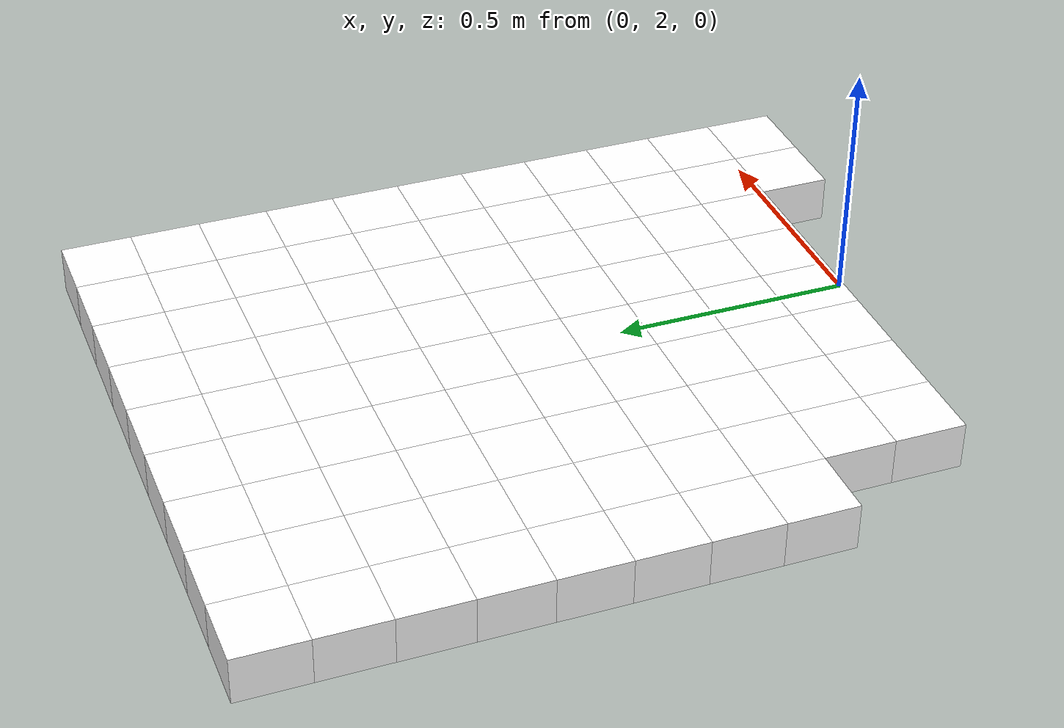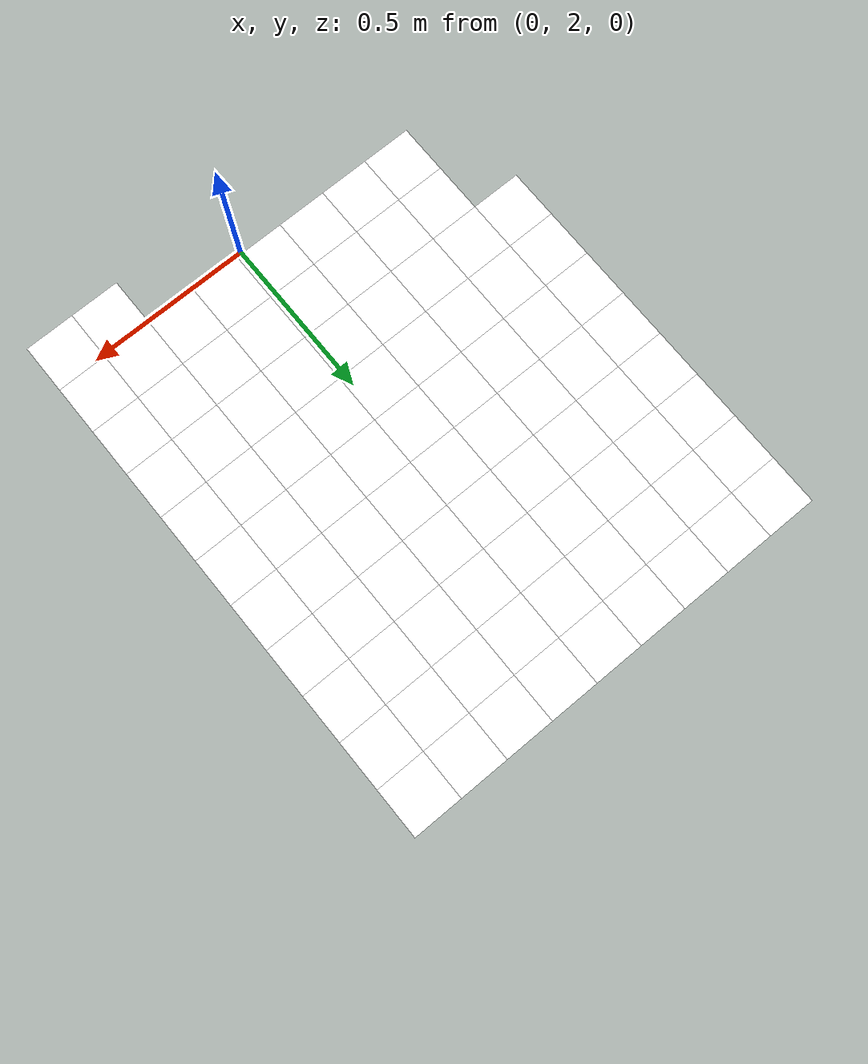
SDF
<sdf version="1.7">
 <world name="default">
  <include><uri>model://sun</uri></include>
  <model name="static_environment">
   <static>true</static>
   <link name="region_196">
    <pose>0.39999999999999947 1.9499999999999997 0.0 0.0 0.0 0.0</pose>
    <collision name="region_196_collision">
     <geometry><box><size>0.15 0.15 0.1</size></box></geometry>
     <surface><friction><ode><mu>1.0</mu><mu2>1.0</mu2></ode></friction></surface>
    </collision>
    <visual name="region_196_visual">
     <geometry><box><size>0.15 0.15 0.1</size></box></geometry>
     <material><ambient>1.0 1.0 1.0 1.0</ambient><diffuse>1.0 1.0 1.0 1.0</diffuse></material>
    </visual>
   </link>
   <link name="region_197">
    <pose>0.5499999999999994 1.9499999999999997 0.0 0.0 0.0 0.0</pose>
    <collision name="region_197_collision">
     <geometry><box><size>0.15 0.15 0.1</size></box></geometry>
     <surface><friction><ode><mu>1.0</mu><mu2>1.0</mu2></ode></friction></surface>
    </collision>
    <visual name="region_197_visual">
     <geometry><box><size>0.15 0.15 0.1</size></box></geometry>
     <material><ambient>1.0 1.0 1.0 1.0</ambient><diffuse>1.0 1.0 1.0 1.0</diffuse></material>
    </visual>
   </link>
   <link name="region_210">
    <pose>-0.5000000000000002 2.0999999999999996 0.0 0.0 0.0 0.0</pose>
    <collision name="region_210_collision">
     <geometry><box><size>0.15 0.15 0.1</size></box></geometry>
     <surface><friction><ode><mu>1.0</mu><mu2>1.0</mu2></ode></friction></surface>
    </collision>
    <visual name="region_210_visual">
     <geometry><box><size>0.15 0.15 0.1</size></box></geometry>
     <material><ambient>1.0 1.0 1.0 1.0</ambient><diffuse>1.0 1.0 1.0 1.0</diffuse></material>
    </visual>
   </link>
   <link name="region_211">
    <pose>-0.3500000000000003 2.0999999999999996 0.0 0.0 0.0 0.0</pose>
    <collision name="region_211_collision">
     <geometry><box><size>0.15 0.15 0.1</size></box></geometry>
     <surface><friction><ode><mu>1.0</mu><mu2>1.0</mu2></ode></friction></surface>
    </collision>
    <visual name="region_211_visual">
     <geometry><box><size>0.15 0.15 0.1</size></box></geometry>
     <material><ambient>1.0 1.0 1.0 1.0</ambient><diffuse>1.0 1.0 1.0 1.0</diffuse></material>
    </visual>
   </link>
   <link name="region_212">
    <pose>-0.2000000000000004 2.0999999999999996 0.0 0.0 0.0 0.0</pose>
    <collision name="region_212_collision">
     <geometry><box><size>0.15 0.15 0.1</size></box></geometry>
     <surface><friction><ode><mu>1.0</mu><mu2>1.0</mu2></ode></friction></surface>
    </collision>
    <visual name="region_212_visual">
     <geometry><box><size>0.15 0.15 0.1</size></box></geometry>
     <material><ambient>1.0 1.0 1.0 1.0</ambient><diffuse>1.0 1.0 1.0 1.0</diffuse></material>
    </visual>
   </link>
   <link name="region_213">
    <pose>-0.05000000000000049 2.0999999999999996 0.0 0.0 0.0 0.0</pose>
    <collision name="region_213_collision">
     <geometry><box><size>0.15 0.15 0.1</size></box></geometry>
     <surface><friction><ode><mu>1.0</mu><mu2>1.0</mu2></ode></friction></surface>
    </collision>
    <visual name="region_213_visual">
     <geometry><box><size>0.15 0.15 0.1</size></box></geometry>
     <material><ambient>1.0 1.0 1.0 1.0</ambient><diffuse>1.0 1.0 1.0 1.0</diffuse></material>
    </visual>
   </link>
   <link name="region_214">
    <pose>0.09999999999999964 2.0999999999999996 0.0 0.0 0.0 0.0</pose>
    <collision name="region_214_collision">
     <geometry><box><size>0.15 0.15 0.1</size></box></geometry>
     <surface><friction><ode><mu>1.0</mu><mu2>1.0</mu2></ode></friction></surface>
    </collision>
    <visual name="region_214_visual">
     <geometry><box><size>0.15 0.15 0.1</size></box></geometry>
     <material><ambient>1.0 1.0 1.0 1.0</ambient><diffuse>1.0 1.0 1.0 1.0</diffuse></material>
    </visual>
   </link>
   <link name="region_215">
    <pose>0.24999999999999956 2.0999999999999996 0.0 0.0 0.0 0.0</pose>
    <collision name="region_215_collision">
     <geometry><box><size>0.15 0.15 0.1</size></box></geometry>
     <surface><friction><ode><mu>1.0</mu><mu2>1.0</mu2></ode></friction></surface>
    </collision>
    <visual name="region_215_visual">
     <geometry><box><size>0.15 0.15 0.1</size></box></geometry>
     <material><ambient>1.0 1.0 1.0 1.0</ambient><diffuse>1.0 1.0 1.0 1.0</diffuse></material>
    </visual>
   </link>
   <link name="region_216">
    <pose>0.39999999999999947 2.0999999999999996 0.0 0.0 0.0 0.0</pose>
    <collision name="region_216_collision">
     <geometry><box><size>0.15 0.15 0.1</size></box></geometry>
     <surface><friction><ode><mu>1.0</mu><mu2>1.0</mu2></ode></friction></surface>
    </collision>
    <visual name="region_216_visual">
     <geometry><box><size>0.15 0.15 0.1</size></box></geometry>
     <material><ambient>1.0 1.0 1.0 1.0</ambient><diffuse>1.0 1.0 1.0 1.0</diffuse></material>
    </visual>
   </link>
   <link name="region_217">
    <pose>0.5499999999999994 2.0999999999999996 0.0 0.0 0.0 0.0</pose>
    <collision name="region_217_collision">
     <geometry><box><size>0.15 0.15 0.1</size></box></geometry>
     <surface><friction><ode><mu>1.0</mu><mu2>1.0</mu2></ode></friction></surface>
    </collision>
    <visual name="region_217_visual">
     <geometry><box><size>0.15 0.15 0.1</size></box></geometry>
     <material><ambient>1.0 1.0 1.0 1.0</ambient><diffuse>1.0 1.0 1.0 1.0</diffuse></material>
    </visual>
   </link>
   <link name="region_230">
    <pose>-0.5000000000000002 2.2499999999999996 0.0 0.0 0.0 0.0</pose>
    <collision name="region_230_collision">
     <geometry><box><size>0.15 0.15 0.1</size></box></geometry>
     <surface><friction><ode><mu>1.0</mu><mu2>1.0</mu2></ode></friction></surface>
    </collision>
    <visual name="region_230_visual">
     <geometry><box><size>0.15 0.15 0.1</size></box></geometry>
     <material><ambient>1.0 1.0 1.0 1.0</ambient><diffuse>1.0 1.0 1.0 1.0</diffuse></material>
    </visual>
   </link>
   <link name="region_231">
    <pose>-0.3500000000000003 2.2499999999999996 0.0 0.0 0.0 0.0</pose>
    <collision name="region_231_collision">
     <geometry><box><size>0.15 0.15 0.1</size></box></geometry>
     <surface><friction><ode><mu>1.0</mu><mu2>1.0</mu2></ode></friction></surface>
    </collision>
    <visual name="region_231_visual">
     <geometry><box><size>0.15 0.15 0.1</size></box></geometry>
     <material><ambient>1.0 1.0 1.0 1.0</ambient><diffuse>1.0 1.0 1.0 1.0</diffuse></material>
    </visual>
   </link>
   <link name="region_232">
    <pose>-0.2000000000000004 2.2499999999999996 0.0 0.0 0.0 0.0</pose>
    <collision name="region_232_collision">
     <geometry><box><size>0.15 0.15 0.1</size></box></geometry>
     <surface><friction><ode><mu>1.0</mu><mu2>1.0</mu2></ode></friction></surface>
    </collision>
    <visual name="region_232_visual">
     <geometry><box><size>0.15 0.15 0.1</size></box></geometry>
     <material><ambient>1.0 1.0 1.0 1.0</ambient><diffuse>1.0 1.0 1.0 1.0</diffuse></material>
    </visual>
   </link>
   <link name="region_233">
    <pose>-0.05000000000000049 2.2499999999999996 0.0 0.0 0.0 0.0</pose>
    <collision name="region_233_collision">
     <geometry><box><size>0.15 0.15 0.1</size></box></geometry>
     <surface><friction><ode><mu>1.0</mu><mu2>1.0</mu2></ode></friction></surface>
    </collision>
    <visual name="region_233_visual">
     <geometry><box><size>0.15 0.15 0.1</size></box></geometry>
     <material><ambient>1.0 1.0 1.0 1.0</ambient><diffuse>1.0 1.0 1.0 1.0</diffuse></material>
    </visual>
   </link>
   <link name="region_234">
    <pose>0.09999999999999964 2.2499999999999996 0.0 0.0 0.0 0.0</pose>
    <collision name="region_234_collision">
     <geometry><box><size>0.15 0.15 0.1</size></box></geometry>
     <surface><friction><ode><mu>1.0</mu><mu2>1.0</mu2></ode></friction></surface>
    </collision>
    <visual name="region_234_visual">
     <geometry><box><size>0.15 0.15 0.1</size></box></geometry>
     <material><ambient>1.0 1.0 1.0 1.0</ambient><diffuse>1.0 1.0 1.0 1.0</diffuse></material>
    </visual>
   </link>
   <link name="region_235">
    <pose>0.24999999999999956 2.2499999999999996 0.0 0.0 0.0 0.0</pose>
    <collision name="region_235_collision">
     <geometry><box><size>0.15 0.15 0.1</size></box></geometry>
     <surface><friction><ode><mu>1.0</mu><mu2>1.0</mu2></ode></friction></surface>
    </collision>
    <visual name="region_235_visual">
     <geometry><box><size>0.15 0.15 0.1</size></box></geometry>
     <material><ambient>1.0 1.0 1.0 1.0</ambient><diffuse>1.0 1.0 1.0 1.0</diffuse></material>
    </visual>
   </link>
   <link name="region_236">
    <pose>0.39999999999999947 2.2499999999999996 0.0 0.0 0.0 0.0</pose>
    <collision name="region_236_collision">
     <geometry><box><size>0.15 0.15 0.1</size></box></geometry>
     <surface><friction><ode><mu>1.0</mu><mu2>1.0</mu2></ode></friction></surface>
    </collision>
    <visual name="region_236_visual">
     <geometry><box><size>0.15 0.15 0.1</size></box></geometry>
     <material><ambient>1.0 1.0 1.0 1.0</ambient><diffuse>1.0 1.0 1.0 1.0</diffuse></material>
    </visual>
   </link>
   <link name="region_237">
    <pose>0.5499999999999994 2.2499999999999996 0.0 0.0 0.0 0.0</pose>
    <collision name="region_237_collision">
     <geometry><box><size>0.15 0.15 0.1</size></box></geometry>
     <surface><friction><ode><mu>1.0</mu><mu2>1.0</mu2></ode></friction></surface>
    </collision>
    <visual name="region_237_visual">
     <geometry><box><size>0.15 0.15 0.1</size></box></geometry>
     <material><ambient>1.0 1.0 1.0 1.0</ambient><diffuse>1.0 1.0 1.0 1.0</diffuse></material>
    </visual>
   </link>
   <link name="region_249">
    <pose>-0.6500000000000001 2.3999999999999995 0.0 0.0 0.0 0.0</pose>
    <collision name="region_249_collision">
     <geometry><box><size>0.15 0.15 0.1</size></box></geometry>
     <surface><friction><ode><mu>1.0</mu><mu2>1.0</mu2></ode></friction></surface>
    </collision>
    <visual name="region_249_visual">
     <geometry><box><size>0.15 0.15 0.1</size></box></geometry>
     <material><ambient>1.0 1.0 1.0 1.0</ambient><diffuse>1.0 1.0 1.0 1.0</diffuse></material>
    </visual>
   </link>
   <link name="region_250">
    <pose>-0.5000000000000002 2.3999999999999995 0.0 0.0 0.0 0.0</pose>
    <collision name="region_250_collision">
     <geometry><box><size>0.15 0.15 0.1</size></box></geometry>
     <surface><friction><ode><mu>1.0</mu><mu2>1.0</mu2></ode></friction></surface>
    </collision>
    <visual name="region_250_visual">
     <geometry><box><size>0.15 0.15 0.1</size></box></geometry>
     <material><ambient>1.0 1.0 1.0 1.0</ambient><diffuse>1.0 1.0 1.0 1.0</diffuse></material>
    </visual>
   </link>
   <link name="region_251">
    <pose>-0.3500000000000003 2.3999999999999995 0.0 0.0 0.0 0.0</pose>
    <collision name="region_251_collision">
     <geometry><box><size>0.15 0.15 0.1</size></box></geometry>
     <surface><friction><ode><mu>1.0</mu><mu2>1.0</mu2></ode></friction></surface>
    </collision>
    <visual name="region_251_visual">
     <geometry><box><size>0.15 0.15 0.1</size></box></geometry>
     <material><ambient>1.0 1.0 1.0 1.0</ambient><diffuse>1.0 1.0 1.0 1.0</diffuse></material>
    </visual>
   </link>
   <link name="region_252">
    <pose>-0.2000000000000004 2.3999999999999995 0.0 0.0 0.0 0.0</pose>
    <collision name="region_252_collision">
     <geometry><box><size>0.15 0.15 0.1</size></box></geometry>
     <surface><friction><ode><mu>1.0</mu><mu2>1.0</mu2></ode></friction></surface>
    </collision>
    <visual name="region_252_visual">
     <geometry><box><size>0.15 0.15 0.1</size></box></geometry>
     <material><ambient>1.0 1.0 1.0 1.0</ambient><diffuse>1.0 1.0 1.0 1.0</diffuse></material>
    </visual>
   </link>
   <link name="region_253">
    <pose>-0.05000000000000049 2.3999999999999995 0.0 0.0 0.0 0.0</pose>
    <collision name="region_253_collision">
     <geometry><box><size>0.15 0.15 0.1</size></box></geometry>
     <surface><friction><ode><mu>1.0</mu><mu2>1.0</mu2></ode></friction></surface>
    </collision>
    <visual name="region_253_visual">
     <geometry><box><size>0.15 0.15 0.1</size></box></geometry>
     <material><ambient>1.0 1.0 1.0 1.0</ambient><diffuse>1.0 1.0 1.0 1.0</diffuse></material>
    </visual>
   </link>
   <link name="region_254">
    <pose>0.09999999999999964 2.3999999999999995 0.0 0.0 0.0 0.0</pose>
    <collision name="region_254_collision">
     <geometry><box><size>0.15 0.15 0.1</size></box></geometry>
     <surface><friction><ode><mu>1.0</mu><mu2>1.0</mu2></ode></friction></surface>
    </collision>
    <visual name="region_254_visual">
     <geometry><box><size>0.15 0.15 0.1</size></box></geometry>
     <material><ambient>1.0 1.0 1.0 1.0</ambient><diffuse>1.0 1.0 1.0 1.0</diffuse></material>
    </visual>
   </link>
   <link name="region_255">
    <pose>0.24999999999999956 2.3999999999999995 0.0 0.0 0.0 0.0</pose>
    <collision name="region_255_collision">
     <geometry><box><size>0.15 0.15 0.1</size></box></geometry>
     <surface><friction><ode><mu>1.0</mu><mu2>1.0</mu2></ode></friction></surface>
    </collision>
    <visual name="region_255_visual">
     <geometry><box><size>0.15 0.15 0.1</size></box></geometry>
     <material><ambient>1.0 1.0 1.0 1.0</ambient><diffuse>1.0 1.0 1.0 1.0</diffuse></material>
    </visual>
   </link>
   <link name="region_256">
    <pose>0.39999999999999947 2.3999999999999995 0.0 0.0 0.0 0.0</pose>
    <collision name="region_256_collision">
     <geometry><box><size>0.15 0.15 0.1</size></box></geometry>
     <surface><friction><ode><mu>1.0</mu><mu2>1.0</mu2></ode></friction></surface>
    </collision>
    <visual name="region_256_visual">
     <geometry><box><size>0.15 0.15 0.1</size></box></geometry>
     <material><ambient>1.0 1.0 1.0 1.0</ambient><diffuse>1.0 1.0 1.0 1.0</diffuse></material>
    </visual>
   </link>
   <link name="region_257">
    <pose>0.5499999999999994 2.3999999999999995 0.0 0.0 0.0 0.0</pose>
    <collision name="region_257_collision">
     <geometry><box><size>0.15 0.15 0.1</size></box></geometry>
     <surface><friction><ode><mu>1.0</mu><mu2>1.0</mu2></ode></friction></surface>
    </collision>
    <visual name="region_257_visual">
     <geometry><box><size>0.15 0.15 0.1</size></box></geometry>
     <material><ambient>1.0 1.0 1.0 1.0</ambient><diffuse>1.0 1.0 1.0 1.0</diffuse></material>
    </visual>
   </link>
   <link name="region_269">
    <pose>-0.6500000000000001 2.5499999999999994 0.0 0.0 0.0 0.0</pose>
    <collision name="region_269_collision">
     <geometry><box><size>0.15 0.15 0.1</size></box></geometry>
     <surface><friction><ode><mu>1.0</mu><mu2>1.0</mu2></ode></friction></surface>
    </collision>
    <visual name="region_269_visual">
     <geometry><box><size>0.15 0.15 0.1</size></box></geometry>
     <material><ambient>1.0 1.0 1.0 1.0</ambient><diffuse>1.0 1.0 1.0 1.0</diffuse></material>
    </visual>
   </link>
   <link name="region_270">
    <pose>-0.5000000000000002 2.5499999999999994 0.0 0.0 0.0 0.0</pose>
    <collision name="region_270_collision">
     <geometry><box><size>0.15 0.15 0.1</size></box></geometry>
     <surface><friction><ode><mu>1.0</mu><mu2>1.0</mu2></ode></friction></surface>
    </collision>
    <visual name="region_270_visual">
     <geometry><box><size>0.15 0.15 0.1</size></box></geometry>
     <material><ambient>1.0 1.0 1.0 1.0</ambient><diffuse>1.0 1.0 1.0 1.0</diffuse></material>
    </visual>
   </link>
   <link name="region_271">
    <pose>-0.3500000000000003 2.5499999999999994 0.0 0.0 0.0 0.0</pose>
    <collision name="region_271_collision">
     <geometry><box><size>0.15 0.15 0.1</size></box></geometry>
     <surface><friction><ode><mu>1.0</mu><mu2>1.0</mu2></ode></friction></surface>
    </collision>
    <visual name="region_271_visual">
     <geometry><box><size>0.15 0.15 0.1</size></box></geometry>
     <material><ambient>1.0 1.0 1.0 1.0</ambient><diffuse>1.0 1.0 1.0 1.0</diffuse></material>
    </visual>
   </link>
   <link name="region_272">
    <pose>-0.2000000000000004 2.5499999999999994 0.0 0.0 0.0 0.0</pose>
    <collision name="region_272_collision">
     <geometry><box><size>0.15 0.15 0.1</size></box></geometry>
     <surface><friction><ode><mu>1.0</mu><mu2>1.0</mu2></ode></friction></surface>
    </collision>
    <visual name="region_272_visual">
     <geometry><box><size>0.15 0.15 0.1</size></box></geometry>
     <material><ambient>1.0 1.0 1.0 1.0</ambient><diffuse>1.0 1.0 1.0 1.0</diffuse></material>
    </visual>
   </link>
   <link name="region_273">
    <pose>-0.05000000000000049 2.5499999999999994 0.0 0.0 0.0 0.0</pose>
    <collision name="region_273_collision">
     <geometry><box><size>0.15 0.15 0.1</size></box></geometry>
     <surface><friction><ode><mu>1.0</mu><mu2>1.0</mu2></ode></friction></surface>
    </collision>
    <visual name="region_273_visual">
     <geometry><box><size>0.15 0.15 0.1</size></box></geometry>
     <material><ambient>1.0 1.0 1.0 1.0</ambient><diffuse>1.0 1.0 1.0 1.0</diffuse></material>
    </visual>
   </link>
   <link name="region_274">
    <pose>0.09999999999999964 2.5499999999999994 0.0 0.0 0.0 0.0</pose>
    <collision name="region_274_collision">
     <geometry><box><size>0.15 0.15 0.1</size></box></geometry>
     <surface><friction><ode><mu>1.0</mu><mu2>1.0</mu2></ode></friction></surface>
    </collision>
    <visual name="region_274_visual">
     <geometry><box><size>0.15 0.15 0.1</size></box></geometry>
     <material><ambient>1.0 1.0 1.0 1.0</ambient><diffuse>1.0 1.0 1.0 1.0</diffuse></material>
    </visual>
   </link>
   <link name="region_275">
    <pose>0.24999999999999956 2.5499999999999994 0.0 0.0 0.0 0.0</pose>
    <collision name="region_275_collision">
     <geometry><box><size>0.15 0.15 0.1</size></box></geometry>
     <surface><friction><ode><mu>1.0</mu><mu2>1.0</mu2></ode></friction></surface>
    </collision>
    <visual name="region_275_visual">
     <geometry><box><size>0.15 0.15 0.1</size></box></geometry>
     <material><ambient>1.0 1.0 1.0 1.0</ambient><diffuse>1.0 1.0 1.0 1.0</diffuse></material>
    </visual>
   </link>
   <link name="region_276">
    <pose>0.39999999999999947 2.5499999999999994 0.0 0.0 0.0 0.0</pose>
    <collision name="region_276_collision">
     <geometry><box><size>0.15 0.15 0.1</size></box></geometry>
     <surface><friction><ode><mu>1.0</mu><mu2>1.0</mu2></ode></friction></surface>
    </collision>
    <visual name="region_276_visual">
     <geometry><box><size>0.15 0.15 0.1</size></box></geometry>
     <material><ambient>1.0 1.0 1.0 1.0</ambient><diffuse>1.0 1.0 1.0 1.0</diffuse></material>
    </visual>
   </link>
   <link name="region_277">
    <pose>0.5499999999999994 2.5499999999999994 0.0 0.0 0.0 0.0</pose>
    <collision name="region_277_collision">
     <geometry><box><size>0.15 0.15 0.1</size></box></geometry>
     <surface><friction><ode><mu>1.0</mu><mu2>1.0</mu2></ode></friction></surface>
    </collision>
    <visual name="region_277_visual">
     <geometry><box><size>0.15 0.15 0.1</size></box></geometry>
     <material><ambient>1.0 1.0 1.0 1.0</ambient><diffuse>1.0 1.0 1.0 1.0</diffuse></material>
    </visual>
   </link>
   <link name="region_289">
    <pose>-0.6500000000000001 2.6999999999999997 0.0 0.0 0.0 0.0</pose>
    <collision name="region_289_collision">
     <geometry><box><size>0.15 0.15 0.1</size></box></geometry>
     <surface><friction><ode><mu>1.0</mu><mu2>1.0</mu2></ode></friction></surface>
    </collision>
    <visual name="region_289_visual">
     <geometry><box><size>0.15 0.15 0.1</size></box></geometry>
     <material><ambient>1.0 1.0 1.0 1.0</ambient><diffuse>1.0 1.0 1.0 1.0</diffuse></material>
    </visual>
   </link>
   <link name="region_290">
    <pose>-0.5000000000000002 2.6999999999999997 0.0 0.0 0.0 0.0</pose>
    <collision name="region_290_collision">
     <geometry><box><size>0.15 0.15 0.1</size></box></geometry>
     <surface><friction><ode><mu>1.0</mu><mu2>1.0</mu2></ode></friction></surface>
    </collision>
    <visual name="region_290_visual">
     <geometry><box><size>0.15 0.15 0.1</size></box></geometry>
     <material><ambient>1.0 1.0 1.0 1.0</ambient><diffuse>1.0 1.0 1.0 1.0</diffuse></material>
    </visual>
   </link>
   <link name="region_291">
    <pose>-0.3500000000000003 2.6999999999999997 0.0 0.0 0.0 0.0</pose>
    <collision name="region_291_collision">
     <geometry><box><size>0.15 0.15 0.1</size></box></geometry>
     <surface><friction><ode><mu>1.0</mu><mu2>1.0</mu2></ode></friction></surface>
    </collision>
    <visual name="region_291_visual">
     <geometry><box><size>0.15 0.15 0.1</size></box></geometry>
     <material><ambient>1.0 1.0 1.0 1.0</ambient><diffuse>1.0 1.0 1.0 1.0</diffuse></material>
    </visual>
   </link>
   <link name="region_292">
    <pose>-0.2000000000000004 2.6999999999999997 0.0 0.0 0.0 0.0</pose>
    <collision name="region_292_collision">
     <geometry><box><size>0.15 0.15 0.1</size></box></geometry>
     <surface><friction><ode><mu>1.0</mu><mu2>1.0</mu2></ode></friction></surface>
    </collision>
    <visual name="region_292_visual">
     <geometry><box><size>0.15 0.15 0.1</size></box></geometry>
     <material><ambient>1.0 1.0 1.0 1.0</ambient><diffuse>1.0 1.0 1.0 1.0</diffuse></material>
    </visual>
   </link>
   <link name="region_293">
    <pose>-0.05000000000000049 2.6999999999999997 0.0 0.0 0.0 0.0</pose>
    <collision name="region_293_collision">
     <geometry><box><size>0.15 0.15 0.1</size></box></geometry>
     <surface><friction><ode><mu>1.0</mu><mu2>1.0</mu2></ode></friction></surface>
    </collision>
    <visual name="region_293_visual">
     <geometry><box><size>0.15 0.15 0.1</size></box></geometry>
     <material><ambient>1.0 1.0 1.0 1.0</ambient><diffuse>1.0 1.0 1.0 1.0</diffuse></material>
    </visual>
   </link>
   <link name="region_294">
    <pose>0.09999999999999964 2.6999999999999997 0.0 0.0 0.0 0.0</pose>
    <collision name="region_294_collision">
     <geometry><box><size>0.15 0.15 0.1</size></box></geometry>
     <surface><friction><ode><mu>1.0</mu><mu2>1.0</mu2></ode></friction></surface>
    </collision>
    <visual name="region_294_visual">
     <geometry><box><size>0.15 0.15 0.1</size></box></geometry>
     <material><ambient>1.0 1.0 1.0 1.0</ambient><diffuse>1.0 1.0 1.0 1.0</diffuse></material>
    </visual>
   </link>
   <link name="region_295">
    <pose>0.24999999999999956 2.6999999999999997 0.0 0.0 0.0 0.0</pose>
    <collision name="region_295_collision">
     <geometry><box><size>0.15 0.15 0.1</size></box></geometry>
     <surface><friction><ode><mu>1.0</mu><mu2>1.0</mu2></ode></friction></surface>
    </collision>
    <visual name="region_295_visual">
     <geometry><box><size>0.15 0.15 0.1</size></box></geometry>
     <material><ambient>1.0 1.0 1.0 1.0</ambient><diffuse>1.0 1.0 1.0 1.0</diffuse></material>
    </visual>
   </link>
   <link name="region_296">
    <pose>0.39999999999999947 2.6999999999999997 0.0 0.0 0.0 0.0</pose>
    <collision name="region_296_collision">
     <geometry><box><size>0.15 0.15 0.1</size></box></geometry>
     <surface><friction><ode><mu>1.0</mu><mu2>1.0</mu2></ode></friction></surface>
    </collision>
    <visual name="region_296_visual">
     <geometry><box><size>0.15 0.15 0.1</size></box></geometry>
     <material><ambient>1.0 1.0 1.0 1.0</ambient><diffuse>1.0 1.0 1.0 1.0</diffuse></material>
    </visual>
   </link>
   <link name="region_297">
    <pose>0.5499999999999994 2.6999999999999997 0.0 0.0 0.0 0.0</pose>
    <collision name="region_297_collision">
     <geometry><box><size>0.15 0.15 0.1</size></box></geometry>
     <surface><friction><ode><mu>1.0</mu><mu2>1.0</mu2></ode></friction></surface>
    </collision>
    <visual name="region_297_visual">
     <geometry><box><size>0.15 0.15 0.1</size></box></geometry>
     <material><ambient>1.0 1.0 1.0 1.0</ambient><diffuse>1.0 1.0 1.0 1.0</diffuse></material>
    </visual>
   </link>
   <link name="region_309">
    <pose>-0.6500000000000001 2.8499999999999996 0.0 0.0 0.0 0.0</pose>
    <collision name="region_309_collision">
     <geometry><box><size>0.15 0.15 0.1</size></box></geometry>
     <surface><friction><ode><mu>1.0</mu><mu2>1.0</mu2></ode></friction></surface>
    </collision>
    <visual name="region_309_visual">
     <geometry><box><size>0.15 0.15 0.1</size></box></geometry>
     <material><ambient>1.0 1.0 1.0 1.0</ambient><diffuse>1.0 1.0 1.0 1.0</diffuse></material>
    </visual>
   </link>
   <link name="region_310">
    <pose>-0.5000000000000002 2.8499999999999996 0.0 0.0 0.0 0.0</pose>
    <collision name="region_310_collision">
     <geometry><box><size>0.15 0.15 0.1</size></box></geometry>
     <surface><friction><ode><mu>1.0</mu><mu2>1.0</mu2></ode></friction></surface>
    </collision>
    <visual name="region_310_visual">
     <geometry><box><size>0.15 0.15 0.1</size></box></geometry>
     <material><ambient>1.0 1.0 1.0 1.0</ambient><diffuse>1.0 1.0 1.0 1.0</diffuse></material>
    </visual>
   </link>
   <link name="region_311">
    <pose>-0.3500000000000003 2.8499999999999996 0.0 0.0 0.0 0.0</pose>
    <collision name="region_311_collision">
     <geometry><box><size>0.15 0.15 0.1</size></box></geometry>
     <surface><friction><ode><mu>1.0</mu><mu2>1.0</mu2></ode></friction></surface>
    </collision>
    <visual name="region_311_visual">
     <geometry><box><size>0.15 0.15 0.1</size></box></geometry>
     <material><ambient>1.0 1.0 1.0 1.0</ambient><diffuse>1.0 1.0 1.0 1.0</diffuse></material>
    </visual>
   </link>
   <link name="region_312">
    <pose>-0.2000000000000004 2.8499999999999996 0.0 0.0 0.0 0.0</pose>
    <collision name="region_312_collision">
     <geometry><box><size>0.15 0.15 0.1</size></box></geometry>
     <surface><friction><ode><mu>1.0</mu><mu2>1.0</mu2></ode></friction></surface>
    </collision>
    <visual name="region_312_visual">
     <geometry><box><size>0.15 0.15 0.1</size></box></geometry>
     <material><ambient>1.0 1.0 1.0 1.0</ambient><diffuse>1.0 1.0 1.0 1.0</diffuse></material>
    </visual>
   </link>
   <link name="region_313">
    <pose>-0.05000000000000049 2.8499999999999996 0.0 0.0 0.0 0.0</pose>
    <collision name="region_313_collision">
     <geometry><box><size>0.15 0.15 0.1</size></box></geometry>
     <surface><friction><ode><mu>1.0</mu><mu2>1.0</mu2></ode></friction></surface>
    </collision>
    <visual name="region_313_visual">
     <geometry><box><size>0.15 0.15 0.1</size></box></geometry>
     <material><ambient>1.0 1.0 1.0 1.0</ambient><diffuse>1.0 1.0 1.0 1.0</diffuse></material>
    </visual>
   </link>
   <link name="region_314">
    <pose>0.09999999999999964 2.8499999999999996 0.0 0.0 0.0 0.0</pose>
    <collision name="region_314_collision">
     <geometry><box><size>0.15 0.15 0.1</size></box></geometry>
     <surface><friction><ode><mu>1.0</mu><mu2>1.0</mu2></ode></friction></surface>
    </collision>
    <visual name="region_314_visual">
     <geometry><box><size>0.15 0.15 0.1</size></box></geometry>
     <material><ambient>1.0 1.0 1.0 1.0</ambient><diffuse>1.0 1.0 1.0 1.0</diffuse></material>
    </visual>
   </link>
   <link name="region_315">
    <pose>0.24999999999999956 2.8499999999999996 0.0 0.0 0.0 0.0</pose>
    <collision name="region_315_collision">
     <geometry><box><size>0.15 0.15 0.1</size></box></geometry>
     <surface><friction><ode><mu>1.0</mu><mu2>1.0</mu2></ode></friction></surface>
    </collision>
    <visual name="region_315_visual">
     <geometry><box><size>0.15 0.15 0.1</size></box></geometry>
     <material><ambient>1.0 1.0 1.0 1.0</ambient><diffuse>1.0 1.0 1.0 1.0</diffuse></material>
    </visual>
   </link>
   <link name="region_316">
    <pose>0.39999999999999947 2.8499999999999996 0.0 0.0 0.0 0.0</pose>
    <collision name="region_316_collision">
     <geometry><box><size>0.15 0.15 0.1</size></box></geometry>
     <surface><friction><ode><mu>1.0</mu><mu2>1.0</mu2></ode></friction></surface>
    </collision>
    <visual name="region_316_visual">
     <geometry><box><size>0.15 0.15 0.1</size></box></geometry>
     <material><ambient>1.0 1.0 1.0 1.0</ambient><diffuse>1.0 1.0 1.0 1.0</diffuse></material>
    </visual>
   </link>
   <link name="region_317">
    <pose>0.5499999999999994 2.8499999999999996 0.0 0.0 0.0 0.0</pose>
    <collision name="region_317_collision">
     <geometry><box><size>0.15 0.15 0.1</size></box></geometry>
     <surface><friction><ode><mu>1.0</mu><mu2>1.0</mu2></ode></friction></surface>
    </collision>
    <visual name="region_317_visual">
     <geometry><box><size>0.15 0.15 0.1</size></box></geometry>
     <material><ambient>1.0 1.0 1.0 1.0</ambient><diffuse>1.0 1.0 1.0 1.0</diffuse></material>
    </visual>
   </link>
   <link name="region_329">
    <pose>-0.6500000000000001 2.9999999999999996 0.0 0.0 0.0 0.0</pose>
    <collision name="region_329_collision">
     <geometry><box><size>0.15 0.15 0.1</size></box></geometry>
     <surface><friction><ode><mu>1.0</mu><mu2>1.0</mu2></ode></friction></surface>
    </collision>
    <visual name="region_329_visual">
     <geometry><box><size>0.15 0.15 0.1</size></box></geometry>
     <material><ambient>1.0 1.0 1.0 1.0</ambient><diffuse>1.0 1.0 1.0 1.0</diffuse></material>
    </visual>
   </link>
   <link name="region_330">
    <pose>-0.5000000000000002 2.9999999999999996 0.0 0.0 0.0 0.0</pose>
    <collision name="region_330_collision">
     <geometry><box><size>0.15 0.15 0.1</size></box></geometry>
     <surface><friction><ode><mu>1.0</mu><mu2>1.0</mu2></ode></friction></surface>
    </collision>
    <visual name="region_330_visual">
     <geometry><box><size>0.15 0.15 0.1</size></box></geometry>
     <material><ambient>1.0 1.0 1.0 1.0</ambient><diffuse>1.0 1.0 1.0 1.0</diffuse></material>
    </visual>
   </link>
   <link name="region_331">
    <pose>-0.3500000000000003 2.9999999999999996 0.0 0.0 0.0 0.0</pose>
    <collision name="region_331_collision">
     <geometry><box><size>0.15 0.15 0.1</size></box></geometry>
     <surface><friction><ode><mu>1.0</mu><mu2>1.0</mu2></ode></friction></surface>
    </collision>
    <visual name="region_331_visual">
     <geometry><box><size>0.15 0.15 0.1</size></box></geometry>
     <material><ambient>1.0 1.0 1.0 1.0</ambient><diffuse>1.0 1.0 1.0 1.0</diffuse></material>
    </visual>
   </link>
   <link name="region_332">
    <pose>-0.2000000000000004 2.9999999999999996 0.0 0.0 0.0 0.0</pose>
    <collision name="region_332_collision">
     <geometry><box><size>0.15 0.15 0.1</size></box></geometry>
     <surface><friction><ode><mu>1.0</mu><mu2>1.0</mu2></ode></friction></surface>
    </collision>
    <visual name="region_332_visual">
     <geometry><box><size>0.15 0.15 0.1</size></box></geometry>
     <material><ambient>1.0 1.0 1.0 1.0</ambient><diffuse>1.0 1.0 1.0 1.0</diffuse></material>
    </visual>
   </link>
   <link name="region_333">
    <pose>-0.05000000000000049 2.9999999999999996 0.0 0.0 0.0 0.0</pose>
    <collision name="region_333_collision">
     <geometry><box><size>0.15 0.15 0.1</size></box></geometry>
     <surface><friction><ode><mu>1.0</mu><mu2>1.0</mu2></ode></friction></surface>
    </collision>
    <visual name="region_333_visual">
     <geometry><box><size>0.15 0.15 0.1</size></box></geometry>
     <material><ambient>1.0 1.0 1.0 1.0</ambient><diffuse>1.0 1.0 1.0 1.0</diffuse></material>
    </visual>
   </link>
   <link name="region_334">
    <pose>0.09999999999999964 2.9999999999999996 0.0 0.0 0.0 0.0</pose>
    <collision name="region_334_collision">
     <geometry><box><size>0.15 0.15 0.1</size></box></geometry>
     <surface><friction><ode><mu>1.0</mu><mu2>1.0</mu2></ode></friction></surface>
    </collision>
    <visual name="region_334_visual">
     <geometry><box><size>0.15 0.15 0.1</size></box></geometry>
     <material><ambient>1.0 1.0 1.0 1.0</ambient><diffuse>1.0 1.0 1.0 1.0</diffuse></material>
    </visual>
   </link>
   <link name="region_335">
    <pose>0.24999999999999956 2.9999999999999996 0.0 0.0 0.0 0.0</pose>
    <collision name="region_335_collision">
     <geometry><box><size>0.15 0.15 0.1</size></box></geometry>
     <surface><friction><ode><mu>1.0</mu><mu2>1.0</mu2></ode></friction></surface>
    </collision>
    <visual name="region_335_visual">
     <geometry><box><size>0.15 0.15 0.1</size></box></geometry>
     <material><ambient>1.0 1.0 1.0 1.0</ambient><diffuse>1.0 1.0 1.0 1.0</diffuse></material>
    </visual>
   </link>
   <link name="region_336">
    <pose>0.39999999999999947 2.9999999999999996 0.0 0.0 0.0 0.0</pose>
    <collision name="region_336_collision">
     <geometry><box><size>0.15 0.15 0.1</size></box></geometry>
     <surface><friction><ode><mu>1.0</mu><mu2>1.0</mu2></ode></friction></surface>
    </collision>
    <visual name="region_336_visual">
     <geometry><box><size>0.15 0.15 0.1</size></box></geometry>
     <material><ambient>1.0 1.0 1.0 1.0</ambient><diffuse>1.0 1.0 1.0 1.0</diffuse></material>
    </visual>
   </link>
   <link name="region_337">
    <pose>0.5499999999999994 2.9999999999999996 0.0 0.0 0.0 0.0</pose>
    <collision name="region_337_collision">
     <geometry><box><size>0.15 0.15 0.1</size></box></geometry>
     <surface><friction><ode><mu>1.0</mu><mu2>1.0</mu2></ode></friction></surface>
    </collision>
    <visual name="region_337_visual">
     <geometry><box><size>0.15 0.15 0.1</size></box></geometry>
     <material><ambient>1.0 1.0 1.0 1.0</ambient><diffuse>1.0 1.0 1.0 1.0</diffuse></material>
    </visual>
   </link>
   <link name="region_349">
    <pose>-0.6500000000000001 3.1499999999999995 0.0 0.0 0.0 0.0</pose>
    <collision name="region_349_collision">
     <geometry><box><size>0.15 0.15 0.1</size></box></geometry>
     <surface><friction><ode><mu>1.0</mu><mu2>1.0</mu2></ode></friction></surface>
    </collision>
    <visual name="region_349_visual">
     <geometry><box><size>0.15 0.15 0.1</size></box></geometry>
     <material><ambient>1.0 1.0 1.0 1.0</ambient><diffuse>1.0 1.0 1.0 1.0</diffuse></material>
    </visual>
   </link>
   <link name="region_350">
    <pose>-0.5000000000000002 3.1499999999999995 0.0 0.0 0.0 0.0</pose>
    <collision name="region_350_collision">
     <geometry><box><size>0.15 0.15 0.1</size></box></geometry>
     <surface><friction><ode><mu>1.0</mu><mu2>1.0</mu2></ode></friction></surface>
    </collision>
    <visual name="region_350_visual">
     <geometry><box><size>0.15 0.15 0.1</size></box></geometry>
     <material><ambient>1.0 1.0 1.0 1.0</ambient><diffuse>1.0 1.0 1.0 1.0</diffuse></material>
    </visual>
   </link>
   <link name="region_351">
    <pose>-0.3500000000000003 3.1499999999999995 0.0 0.0 0.0 0.0</pose>
    <collision name="region_351_collision">
     <geometry><box><size>0.15 0.15 0.1</size></box></geometry>
     <surface><friction><ode><mu>1.0</mu><mu2>1.0</mu2></ode></friction></surface>
    </collision>
    <visual name="region_351_visual">
     <geometry><box><size>0.15 0.15 0.1</size></box></geometry>
     <material><ambient>1.0 1.0 1.0 1.0</ambient><diffuse>1.0 1.0 1.0 1.0</diffuse></material>
    </visual>
   </link>
   <link name="region_352">
    <pose>-0.2000000000000004 3.1499999999999995 0.0 0.0 0.0 0.0</pose>
    <collision name="region_352_collision">
     <geometry><box><size>0.15 0.15 0.1</size></box></geometry>
     <surface><friction><ode><mu>1.0</mu><mu2>1.0</mu2></ode></friction></surface>
    </collision>
    <visual name="region_352_visual">
     <geometry><box><size>0.15 0.15 0.1</size></box></geometry>
     <material><ambient>1.0 1.0 1.0 1.0</ambient><diffuse>1.0 1.0 1.0 1.0</diffuse></material>
    </visual>
   </link>
   <link name="region_353">
    <pose>-0.05000000000000049 3.1499999999999995 0.0 0.0 0.0 0.0</pose>
    <collision name="region_353_collision">
     <geometry><box><size>0.15 0.15 0.1</size></box></geometry>
     <surface><friction><ode><mu>1.0</mu><mu2>1.0</mu2></ode></friction></surface>
    </collision>
    <visual name="region_353_visual">
     <geometry><box><size>0.15 0.15 0.1</size></box></geometry>
     <material><ambient>1.0 1.0 1.0 1.0</ambient><diffuse>1.0 1.0 1.0 1.0</diffuse></material>
    </visual>
   </link>
   <link name="region_354">
    <pose>0.09999999999999964 3.1499999999999995 0.0 0.0 0.0 0.0</pose>
    <collision name="region_354_collision">
     <geometry><box><size>0.15 0.15 0.1</size></box></geometry>
     <surface><friction><ode><mu>1.0</mu><mu2>1.0</mu2></ode></friction></surface>
    </collision>
    <visual name="region_354_visual">
     <geometry><box><size>0.15 0.15 0.1</size></box></geometry>
     <material><ambient>1.0 1.0 1.0 1.0</ambient><diffuse>1.0 1.0 1.0 1.0</diffuse></material>
    </visual>
   </link>
   <link name="region_355">
    <pose>0.24999999999999956 3.1499999999999995 0.0 0.0 0.0 0.0</pose>
    <collision name="region_355_collision">
     <geometry><box><size>0.15 0.15 0.1</size></box></geometry>
     <surface><friction><ode><mu>1.0</mu><mu2>1.0</mu2></ode></friction></surface>
    </collision>
    <visual name="region_355_visual">
     <geometry><box><size>0.15 0.15 0.1</size></box></geometry>
     <material><ambient>1.0 1.0 1.0 1.0</ambient><diffuse>1.0 1.0 1.0 1.0</diffuse></material>
    </visual>
   </link>
   <link name="region_356">
    <pose>0.39999999999999947 3.1499999999999995 0.0 0.0 0.0 0.0</pose>
    <collision name="region_356_collision">
     <geometry><box><size>0.15 0.15 0.1</size></box></geometry>
     <surface><friction><ode><mu>1.0</mu><mu2>1.0</mu2></ode></friction></surface>
    </collision>
    <visual name="region_356_visual">
     <geometry><box><size>0.15 0.15 0.1</size></box></geometry>
     <material><ambient>1.0 1.0 1.0 1.0</ambient><diffuse>1.0 1.0 1.0 1.0</diffuse></material>
    </visual>
   </link>
   <link name="region_357">
    <pose>0.5499999999999994 3.1499999999999995 0.0 0.0 0.0 0.0</pose>
    <collision name="region_357_collision">
     <geometry><box><size>0.15 0.15 0.1</size></box></geometry>
     <surface><friction><ode><mu>1.0</mu><mu2>1.0</mu2></ode></friction></surface>
    </collision>
    <visual name="region_357_visual">
     <geometry><box><size>0.15 0.15 0.1</size></box></geometry>
     <material><ambient>1.0 1.0 1.0 1.0</ambient><diffuse>1.0 1.0 1.0 1.0</diffuse></material>
    </visual>
   </link>
   <link name="region_369">
    <pose>-0.6500000000000001 3.2999999999999994 0.0 0.0 0.0 0.0</pose>
    <collision name="region_369_collision">
     <geometry><box><size>0.15 0.15 0.1</size></box></geometry>
     <surface><friction><ode><mu>1.0</mu><mu2>1.0</mu2></ode></friction></surface>
    </collision>
    <visual name="region_369_visual">
     <geometry><box><size>0.15 0.15 0.1</size></box></geometry>
     <material><ambient>1.0 1.0 1.0 1.0</ambient><diffuse>1.0 1.0 1.0 1.0</diffuse></material>
    </visual>
   </link>
   <link name="region_370">
    <pose>-0.5000000000000002 3.2999999999999994 0.0 0.0 0.0 0.0</pose>
    <collision name="region_370_collision">
     <geometry><box><size>0.15 0.15 0.1</size></box></geometry>
     <surface><friction><ode><mu>1.0</mu><mu2>1.0</mu2></ode></friction></surface>
    </collision>
    <visual name="region_370_visual">
     <geometry><box><size>0.15 0.15 0.1</size></box></geometry>
     <material><ambient>1.0 1.0 1.0 1.0</ambient><diffuse>1.0 1.0 1.0 1.0</diffuse></material>
    </visual>
   </link>
   <link name="region_371">
    <pose>-0.3500000000000003 3.2999999999999994 0.0 0.0 0.0 0.0</pose>
    <collision name="region_371_collision">
     <geometry><box><size>0.15 0.15 0.1</size></box></geometry>
     <surface><friction><ode><mu>1.0</mu><mu2>1.0</mu2></ode></friction></surface>
    </collision>
    <visual name="region_371_visual">
     <geometry><box><size>0.15 0.15 0.1</size></box></geometry>
     <material><ambient>1.0 1.0 1.0 1.0</ambient><diffuse>1.0 1.0 1.0 1.0</diffuse></material>
    </visual>
   </link>
   <link name="region_372">
    <pose>-0.2000000000000004 3.2999999999999994 0.0 0.0 0.0 0.0</pose>
    <collision name="region_372_collision">
     <geometry><box><size>0.15 0.15 0.1</size></box></geometry>
     <surface><friction><ode><mu>1.0</mu><mu2>1.0</mu2></ode></friction></surface>
    </collision>
    <visual name="region_372_visual">
     <geometry><box><size>0.15 0.15 0.1</size></box></geometry>
     <material><ambient>1.0 1.0 1.0 1.0</ambient><diffuse>1.0 1.0 1.0 1.0</diffuse></material>
    </visual>
   </link>
   <link name="region_373">
    <pose>-0.05000000000000049 3.2999999999999994 0.0 0.0 0.0 0.0</pose>
    <collision name="region_373_collision">
     <geometry><box><size>0.15 0.15 0.1</size></box></geometry>
     <surface><friction><ode><mu>1.0</mu><mu2>1.0</mu2></ode></friction></surface>
    </collision>
    <visual name="region_373_visual">
     <geometry><box><size>0.15 0.15 0.1</size></box></geometry>
     <material><ambient>1.0 1.0 1.0 1.0</ambient><diffuse>1.0 1.0 1.0 1.0</diffuse></material>
    </visual>
   </link>
   <link name="region_374">
    <pose>0.09999999999999964 3.2999999999999994 0.0 0.0 0.0 0.0</pose>
    <collision name="region_374_collision">
     <geometry><box><size>0.15 0.15 0.1</size></box></geometry>
     <surface><friction><ode><mu>1.0</mu><mu2>1.0</mu2></ode></friction></surface>
    </collision>
    <visual name="region_374_visual">
     <geometry><box><size>0.15 0.15 0.1</size></box></geometry>
     <material><ambient>1.0 1.0 1.0 1.0</ambient><diffuse>1.0 1.0 1.0 1.0</diffuse></material>
    </visual>
   </link>
   <link name="region_375">
    <pose>0.24999999999999956 3.2999999999999994 0.0 0.0 0.0 0.0</pose>
    <collision name="region_375_collision">
     <geometry><box><size>0.15 0.15 0.1</size></box></geometry>
     <surface><friction><ode><mu>1.0</mu><mu2>1.0</mu2></ode></friction></surface>
    </collision>
    <visual name="region_375_visual">
     <geometry><box><size>0.15 0.15 0.1</size></box></geometry>
     <material><ambient>1.0 1.0 1.0 1.0</ambient><diffuse>1.0 1.0 1.0 1.0</diffuse></material>
    </visual>
   </link>
   <link name="region_376">
    <pose>0.39999999999999947 3.2999999999999994 0.0 0.0 0.0 0.0</pose>
    <collision name="region_376_collision">
     <geometry><box><size>0.15 0.15 0.1</size></box></geometry>
     <surface><friction><ode><mu>1.0</mu><mu2>1.0</mu2></ode></friction></surface>
    </collision>
    <visual name="region_376_visual">
     <geometry><box><size>0.15 0.15 0.1</size></box></geometry>
     <material><ambient>1.0 1.0 1.0 1.0</ambient><diffuse>1.0 1.0 1.0 1.0</diffuse></material>
    </visual>
   </link>
   <link name="region_377">
    <pose>0.5499999999999994 3.2999999999999994 0.0 0.0 0.0 0.0</pose>
    <collision name="region_377_collision">
     <geometry><box><size>0.15 0.15 0.1</size></box></geometry>
     <surface><friction><ode><mu>1.0</mu><mu2>1.0</mu2></ode></friction></surface>
    </collision>
    <visual name="region_377_visual">
     <geometry><box><size>0.15 0.15 0.1</size></box></geometry>
     <material><ambient>1.0 1.0 1.0 1.0</ambient><diffuse>1.0 1.0 1.0 1.0</diffuse></material>
    </visual>
   </link>
   <link name="region_389">
    <pose>-0.6500000000000001 3.4499999999999993 0.0 0.0 0.0 0.0</pose>
    <collision name="region_389_collision">
     <geometry><box><size>0.15 0.15 0.1</size></box></geometry>
     <surface><friction><ode><mu>1.0</mu><mu2>1.0</mu2></ode></friction></surface>
    </collision>
    <visual name="region_389_visual">
     <geometry><box><size>0.15 0.15 0.1</size></box></geometry>
     <material><ambient>1.0 1.0 1.0 1.0</ambient><diffuse>1.0 1.0 1.0 1.0</diffuse></material>
    </visual>
   </link>
   <link name="region_390">
    <pose>-0.5000000000000002 3.4499999999999993 0.0 0.0 0.0 0.0</pose>
    <collision name="region_390_collision">
     <geometry><box><size>0.15 0.15 0.1</size></box></geometry>
     <surface><friction><ode><mu>1.0</mu><mu2>1.0</mu2></ode></friction></surface>
    </collision>
    <visual name="region_390_visual">
     <geometry><box><size>0.15 0.15 0.1</size></box></geometry>
     <material><ambient>1.0 1.0 1.0 1.0</ambient><diffuse>1.0 1.0 1.0 1.0</diffuse></material>
    </visual>
   </link>
   <link name="region_391">
    <pose>-0.3500000000000003 3.4499999999999993 0.0 0.0 0.0 0.0</pose>
    <collision name="region_391_collision">
     <geometry><box><size>0.15 0.15 0.1</size></box></geometry>
     <surface><friction><ode><mu>1.0</mu><mu2>1.0</mu2></ode></friction></surface>
    </collision>
    <visual name="region_391_visual">
     <geometry><box><size>0.15 0.15 0.1</size></box></geometry>
     <material><ambient>1.0 1.0 1.0 1.0</ambient><diffuse>1.0 1.0 1.0 1.0</diffuse></material>
    </visual>
   </link>
   <link name="region_392">
    <pose>-0.2000000000000004 3.4499999999999993 0.0 0.0 0.0 0.0</pose>
    <collision name="region_392_collision">
     <geometry><box><size>0.15 0.15 0.1</size></box></geometry>
     <surface><friction><ode><mu>1.0</mu><mu2>1.0</mu2></ode></friction></surface>
    </collision>
    <visual name="region_392_visual">
     <geometry><box><size>0.15 0.15 0.1</size></box></geometry>
     <material><ambient>1.0 1.0 1.0 1.0</ambient><diffuse>1.0 1.0 1.0 1.0</diffuse></material>
    </visual>
   </link>
   <link name="region_393">
    <pose>-0.05000000000000049 3.4499999999999993 0.0 0.0 0.0 0.0</pose>
    <collision name="region_393_collision">
     <geometry><box><size>0.15 0.15 0.1</size></box></geometry>
     <surface><friction><ode><mu>1.0</mu><mu2>1.0</mu2></ode></friction></surface>
    </collision>
    <visual name="region_393_visual">
     <geometry><box><size>0.15 0.15 0.1</size></box></geometry>
     <material><ambient>1.0 1.0 1.0 1.0</ambient><diffuse>1.0 1.0 1.0 1.0</diffuse></material>
    </visual>
   </link>
   <link name="region_394">
    <pose>0.09999999999999964 3.4499999999999993 0.0 0.0 0.0 0.0</pose>
    <collision name="region_394_collision">
     <geometry><box><size>0.15 0.15 0.1</size></box></geometry>
     <surface><friction><ode><mu>1.0</mu><mu2>1.0</mu2></ode></friction></surface>
    </collision>
    <visual name="region_394_visual">
     <geometry><box><size>0.15 0.15 0.1</size></box></geometry>
     <material><ambient>1.0 1.0 1.0 1.0</ambient><diffuse>1.0 1.0 1.0 1.0</diffuse></material>
    </visual>
   </link>
   <link name="region_395">
    <pose>0.24999999999999956 3.4499999999999993 0.0 0.0 0.0 0.0</pose>
    <collision name="region_395_collision">
     <geometry><box><size>0.15 0.15 0.1</size></box></geometry>
     <surface><friction><ode><mu>1.0</mu><mu2>1.0</mu2></ode></friction></surface>
    </collision>
    <visual name="region_395_visual">
     <geometry><box><size>0.15 0.15 0.1</size></box></geometry>
     <material><ambient>1.0 1.0 1.0 1.0</ambient><diffuse>1.0 1.0 1.0 1.0</diffuse></material>
    </visual>
   </link>
   <link name="region_396">
    <pose>0.39999999999999947 3.4499999999999993 0.0 0.0 0.0 0.0</pose>
    <collision name="region_396_collision">
     <geometry><box><size>0.15 0.15 0.1</size></box></geometry>
     <surface><friction><ode><mu>1.0</mu><mu2>1.0</mu2></ode></friction></surface>
    </collision>
    <visual name="region_396_visual">
     <geometry><box><size>0.15 0.15 0.1</size></box></geometry>
     <material><ambient>1.0 1.0 1.0 1.0</ambient><diffuse>1.0 1.0 1.0 1.0</diffuse></material>
    </visual>
   </link>
   <link name="region_397">
    <pose>0.5499999999999994 3.4499999999999993 0.0 0.0 0.0 0.0</pose>
    <collision name="region_397_collision">
     <geometry><box><size>0.15 0.15 0.1</size></box></geometry>
     <surface><friction><ode><mu>1.0</mu><mu2>1.0</mu2></ode></friction></surface>
    </collision>
    <visual name="region_397_visual">
     <geometry><box><size>0.15 0.15 0.1</size></box></geometry>
     <material><ambient>1.0 1.0 1.0 1.0</ambient><diffuse>1.0 1.0 1.0 1.0</diffuse></material>
    </visual>
   </link>
  </model>
 </world>
</sdf>
